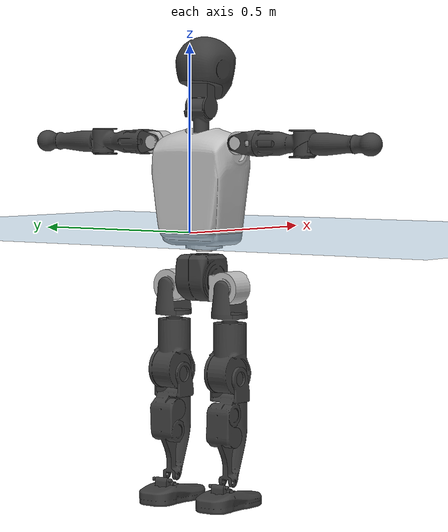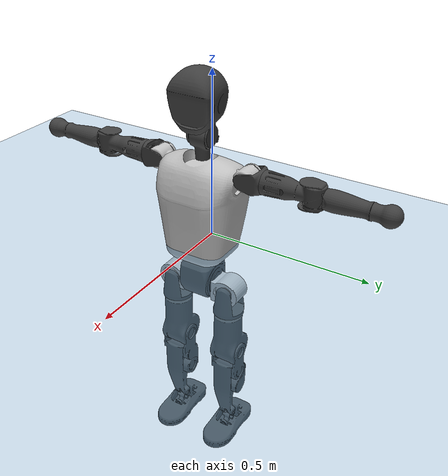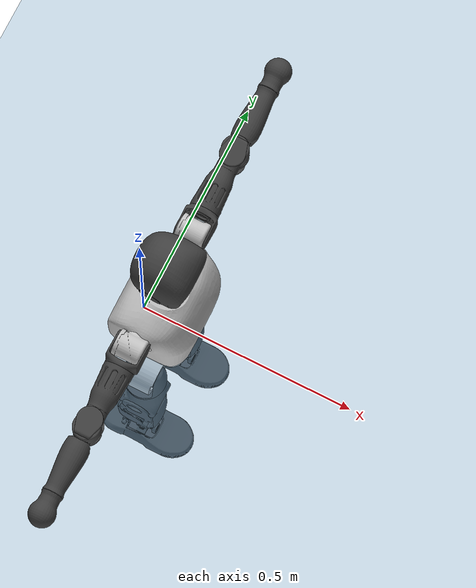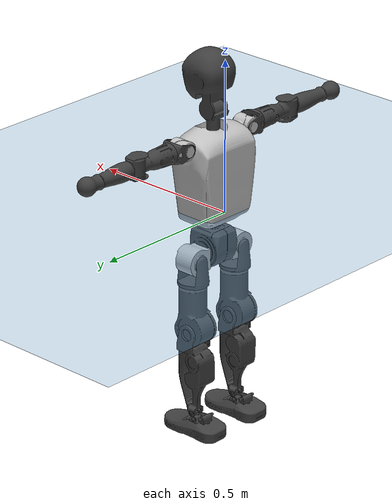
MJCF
<mujoco model="T1">
  <compiler angle="radian" assetdir="assets" balanceinertia="true" inertiafromgeom="false"/>

  <option timestep="0.005" density="1.2" viscosity="2e-05"/>

  <size nkey="1"/>

  <visual>
    <quality shadowsize="8192"/>
    <map shadowclip="0.5"/>
  </visual>

  <default>
    <default class="/">
      <joint armature="0.01" damping="0.01" frictionloss="0.1"/>
      <geom contype="0" conaffinity="0" group="1" solref="-1000 -80"/>
      <site size="0.01 0.005 0.005" group="5"/>
      <general forcelimited="true" biastype="affine" gainprm="25" biasprm="0 -25 -0.6"/>
      <default class="t1">
        <geom rgba="0.25 0.25 0.25 1"/>
        <default class="visual">
          <geom type="mesh" group="2"/>
        </default>
        <default class="collision">
          <geom group="3"/>
        </default>
        <default class="foot">
          <geom size="0.1115 0.05 0.015" type="box" condim="6" group="4" priority="1" solimp="0.015 1 0.015"/>
        </default>
        <default class="reward_collision_sphere">
          <geom group="5" rgba="1 0 0 1"/>
        </default>
      </default>
    </default>
  </default>

  <asset>
    <texture type="skybox" colorspace="auto" name="//unnamed_texture_0" builtin="gradient" rgb1="0.95 0.95 0.95" rgb2="0.95 0.95 0.95" width="100" height="600"/>
    <texture type="2d" colorspace="auto" name="texplane" builtin="checker" rgb1="0.345 0.575 0.748" rgb2="0.345 0.575 0.748" markrgb="1 1 1" width="512" height="512"/>
    <material name="MatPlane" class="/" texture="texplane" texuniform="true" texrepeat="2 2" specular="0.9"/>
    <mesh name="Trunk" class="/" file="Trunk.stl"/>
    <mesh name="H1" class="/" file="H1.stl"/>
    <mesh name="H2" class="/" file="H2.stl"/>
    <mesh name="AL1" class="/" file="AL1.stl"/>
    <mesh name="AL2" class="/" file="AL2.stl"/>
    <mesh name="AL3" class="/" file="AL3.stl"/>
    <mesh name="left_hand_link" class="/" file="left_hand_link.stl"/>
    <mesh name="AR1" class="/" file="AR1.stl"/>
    <mesh name="AR2" class="/" file="AR2.stl"/>
    <mesh name="AR3" class="/" file="AR3.stl"/>
    <mesh name="right_hand_link" class="/" file="right_hand_link.stl"/>
    <mesh name="Waist" class="/" file="Waist.stl"/>
    <mesh name="Hip_Pitch_Left" class="/" file="Hip_Pitch_Left.stl"/>
    <mesh name="Hip_Roll_Left" class="/" file="Hip_Roll_Left.stl"/>
    <mesh name="Hip_Yaw_Left" class="/" file="Hip_Yaw_Left.stl"/>
    <mesh name="Shank_Left" class="/" file="Shank_Left.stl"/>
    <mesh name="Ankle_Cross_Left" class="/" file="Ankle_Cross_Left.stl"/>
    <mesh name="left_foot_link" class="/" file="left_foot_link.stl"/>
    <mesh name="Hip_Pitch_Right" class="/" file="Hip_Pitch_Right.stl"/>
    <mesh name="Hip_Roll_Right" class="/" file="Hip_Roll_Right.stl"/>
    <mesh name="Hip_Yaw_Right" class="/" file="Hip_Yaw_Right.stl"/>
    <mesh name="Shank_Right" class="/" file="Shank_Right.stl"/>
    <mesh name="Ankle_Cross_Right" class="/" file="Ankle_Cross_Right.stl"/>
    <mesh name="right_foot_link" class="/" file="right_foot_link.stl"/>
  </asset>

  <worldbody>
    <geom name="floor" class="/" size="100 100 0.125" type="plane" group="0" material="MatPlane"/>
    <light name="toplight_shadow" class="/" pos="0 0 5" dir="0.0990148 0.0990148 -0.990148" type="directional" ambient="0.04 0.04 0.04" diffuse="0.55 0.55 0.55" specular="0.12 0.12 0.12"/>
    <light name="toplight_fill" class="/" pos="0 0 5" dir="0.0990148 0.0990148 -0.990148" type="directional" castshadow="false" ambient="0.04 0.04 0.04" diffuse="0.3 0.3 0.3" specular="0.08 0.08 0.08"/>
    <body name="trunk" childclass="t1" pos="0.000278627 4.52402e-05 -0.000598736" quat="1 -1.1191e-06 1.2865e-05 1.18884e-05">
      <inertial pos="0.0431598 -0.000220449 0.114925" quat="0.99993 0.00148358 -0.0117376 -0.00065205" mass="9.43443" diaginertia="0.0287629 0.043821 0.0884309"/>
      <joint name="//unnamed_joint_0" type="free" armature="0" damping="0" frictionloss="0"/>
      <geom name="//unnamed_geom_1" class="visual" rgba="0.76 0.76 0.76 1" mesh="Trunk"/>
      <geom name="//unnamed_geom_2" class="collision" size="0.0695111 0.0926815 0.139022" pos="0.0474427 0 0.131542" type="box"/>
      <geom name="//unnamed_geom_3" class="reward_collision_sphere" size="0.106584" pos="0.0474427 0 0.109619"/>
      <geom name="//unnamed_geom_4" class="reward_collision_sphere" size="0.0139022" pos="0.0474427 0.0759515 0"/>
      <geom name="//unnamed_geom_5" class="reward_collision_sphere" size="0.0139022" pos="0.0474427 -0.0759515 0"/>
      <geom name="//unnamed_geom_6" class="reward_collision_sphere" size="0.0139022" pos="0.0474427 0.0956095 0.197313"/>
      <geom name="//unnamed_geom_7" class="reward_collision_sphere" size="0.0139022" pos="0.0474427 -0.0956095 0.197313"/>
      <site name="imu" pos="0.0027193 0.000923846 -0.00153887" size="0.00926815"/>
      <camera name="track" pos="0 -1.78709 0" quat="0.707107 0.707107 0 0" mode="trackcom"/>
      <camera name="ego_camera" pos="0.0964669 0 0.460398" quat="-0.5 -0.5 0.5 0.5"/>
      <body name="H1" pos="0.0494942 0.000608795 0.26632" quat="1 -0.000177515 -0.000148632 0.000361586">
        <inertial pos="-0.00118523 -0.00195954 0.0624436" quat="0.763108 -0.012456 0.00171084 0.646148" mass="0.356897" diaginertia="7.47863e-05 0.000127524 0.000237345"/>
        <joint name="AAHead_yaw" pos="0 0 0" axis="-0.000478556 -0.000124921 1" range="-1.57551 1.55488" armature="0.0094383" damping="0.0108389" frictionloss="0.0909124"/>
        <geom name="//unnamed_geom_8" class="visual" mesh="H1"/>
        <body name="H2" pos="-0.00035545 -0.000305 0.0679412" quat="1 1.72899e-05 2.58148e-05 -2.51289e-05">
          <inertial pos="0.00595601 0.00079494 0.107276" quat="0.988424 0.10616 -0.0748714 -0.0783754" mass="0.504425" diaginertia="0.000626957 0.00109151 0.00271372"/>
          <joint name="Head_pitch" pos="0 0 0" axis="-0.00232791 -0.999997 0.000930215" range="-1.2242 0.334084" armature="0.00934884" damping="0.00969135" frictionloss="0.0926859"/>
          <geom name="//unnamed_geom_9" class="visual" mesh="H2"/>
          <geom name="//unnamed_geom_10" class="collision" size="0.0741452" pos="0.00790712 0 0.12058"/>
          <geom name="//unnamed_geom_11" class="reward_collision_sphere" size="0.0834133" pos="0.0158142 0 0.109619"/>
        </body>
      </body>
      <body name="AL1" pos="0.0470683 0.0953713 0.240634" quat="1 -5.73572e-06 0.000429024 -1.87147e-05">
        <inertial pos="-0.00121863 0.0393915 3.65601e-05" quat="0.50513 0.497631 -0.504234 0.492905" mass="0.420534" diaginertia="0.000421637 0.000737879 0.000462335"/>
        <joint name="Left_Shoulder_Pitch" pos="0 0 0" axis="0.000140006 1 -0.000781674" range="-3.30539 1.23831" armature="0.00948024" damping="0.00665086" frictionloss="0.0929277"/>
        <geom name="//unnamed_geom_12" class="visual" rgba="0.76 0.76 0.76 1" mesh="AL1"/>
        <body name="AL2" pos="0.00097514 0.042945 0.000596815" quat="1 0.000308278 -2.61597e-05 -0.000270529">
          <inertial pos="0.0023272 0.0338845 0.00042721" quat="0.487423 0.512792 -0.488144 0.511056" mass="0.128771" diaginertia="0.000124552 0.000195519 0.000278446"/>
          <joint name="Left_Shoulder_Roll" pos="0 0 0" axis="-0.999998 -0.00152614 0.000846598" range="-1.55468 1.74098" armature="0.00896689" damping="0.0066426" frictionloss="0.0928622"/>
          <geom name="//unnamed_geom_13" class="visual" mesh="AL2"/>
          <body name="AL3" pos="-0.000324065 0.0544532 0.000447113" quat="1 7.43164e-05 0.000108864 0.000188775">
            <inertial pos="-0.000219957 0.0759634 -0.00018288" quat="0.70707 0.70714 -0.00122422 0.00183091" mass="0.812345" diaginertia="0.00399655 0.00727401 0.00099156"/>
            <joint name="Left_Elbow_Pitch" pos="0 0 0" axis="0.000273891 -1 5.17882e-05" range="-2.26187 2.27191" armature="0.00917803" damping="0.00915277" frictionloss="0.0934553"/>
            <geom name="//unnamed_geom_14" class="visual" mesh="AL3"/>
            <geom name="//unnamed_geom_15" class="collision" size="0.0278044 0.0695111" pos="0 0.0446773 0" quat="0.707105 0.707108 0 0" type="cylinder"/>
            <geom name="//unnamed_geom_16" class="reward_collision_sphere" size="0.0333653"/>
            <body name="left_hand_link" pos="0.000727976 0.132335 -0.00019057" quat="1 -2.62796e-05 3.56183e-05 -2.53556e-05">
              <inertial pos="0.000156056 0.0984375 0.000488527" quat="0.707716 0.706497 0.000585836 -0.000261837" mass="0.257614" diaginertia="0.00247657 0.00458601 0.000339683"/>
              <joint name="Left_Elbow_Yaw" pos="0 0 0" axis="0.00195371 0.000657488 0.999998" stiffness="0.000207434" range="-2.44349 -0.0104824" armature="0.00930155" damping="0.014946" frictionloss="0.0951512"/>
              <geom name="//unnamed_geom_17" class="visual" mesh="left_hand_link"/>
              <geom name="//unnamed_geom_18" class="collision" size="0.0278044 0.0810963" pos="0 0.116161 0" quat="0.707105 0.707108 0 0" type="cylinder"/>
              <geom name="//unnamed_geom_19" class="reward_collision_sphere" size="0.0463407"/>
              <geom name="//unnamed_geom_20" class="reward_collision_sphere" size="0.0324385" pos="0 0.0982901 0"/>
              <geom name="//unnamed_geom_21" class="reward_collision_sphere" size="0.0324385" pos="0 0.192113 0"/>
            </body>
          </body>
        </body>
      </body>
      <body name="AR1" pos="0.0452225 -0.094832 0.23971" quat="1 7.2758e-05 0.000218255 -5.07245e-05">
        <inertial pos="-0.00106802 -0.0408569 0.000122396" quat="0.503311 0.495485 -0.505367 0.495759" mass="0.419324" diaginertia="0.000422004 0.000733524 0.000464525"/>
        <joint name="Right_Shoulder_Pitch" pos="0 0 0" axis="0.00447461 -0.999979 0.00466678" stiffness="0.000631813" range="-1.22154 3.30364" armature="0.00932204" damping="0.0053695" frictionloss="0.0932665"/>
        <geom name="//unnamed_geom_22" class="visual" rgba="0.76 0.76 0.76 1" mesh="AR1"/>
        <body name="AR2" pos="-0.000679593 -0.0417153 -0.000373935" quat="1 0.000180349 -0.000158507 5.20529e-05">
          <inertial pos="0.00386601 -0.0341391 0.00122646" quat="0.511638 0.487031 -0.514958 0.485639" mass="0.127498" diaginertia="0.000123748 0.000194691 0.000277559"/>
          <joint name="Right_Shoulder_Roll" pos="0 0 0" axis="-0.99997 -0.00770216 -0.00026599" range="-1.7539 1.56851" armature="0.00930735" damping="0.00746523" frictionloss="0.0927662"/>
          <geom name="//unnamed_geom_23" class="visual" mesh="AR2"/>
          <body name="AR3" pos="0.000469562 -0.0537633 -0.000577143" quat="1 3.19568e-05 -5.17232e-05 6.07611e-05">
            <inertial pos="-0.000443463 -0.0768008 0.000209731" quat="0.707831 0.706371 0.00369076 -0.000872974" mass="0.817563" diaginertia="0.00400603 0.0071973 0.000975329"/>
            <joint name="Right_Elbow_Pitch" pos="0 0 0" axis="0.000334568 1 -0.000743769" range="-2.27038 2.26776" armature="0.00907381" damping="0.00533899" frictionloss="0.0937409"/>
            <geom name="//unnamed_geom_24" class="visual" mesh="AR3"/>
            <geom name="//unnamed_geom_25" class="collision" size="0.0278044 0.0695111" pos="0 -0.0446773 0" quat="0.707105 0.707108 0 0" type="cylinder"/>
            <geom name="//unnamed_geom_26" class="reward_collision_sphere" size="0.0333653"/>
            <body name="right_hand_link" pos="-0.000418938 -0.131616 -0.000183135" quat="1 -1.56312e-06 0.000327415 -9.77881e-05">
              <inertial pos="4.63418e-05 -0.097728 0.00103768" quat="0.706518 0.707695 -0.000108291 -1.75296e-05" mass="0.260436" diaginertia="0.00253662 0.00461749 0.000338271"/>
              <joint name="Right_Elbow_Yaw" pos="0 0 0" axis="-0.00291558 -0.00173505 0.999994" range="0.00965218 2.44731" armature="0.00950662" damping="0.00880881" frictionloss="0.0923008"/>
              <geom name="//unnamed_geom_27" class="visual" mesh="right_hand_link"/>
              <geom name="//unnamed_geom_28" class="collision" size="0.0278044 0.0810963" pos="0 -0.116161 0" quat="0.707105 0.707108 0 0" type="cylinder"/>
              <geom name="//unnamed_geom_29" class="reward_collision_sphere" size="0.0463407"/>
              <geom name="//unnamed_geom_30" class="reward_collision_sphere" size="0.0324385" pos="0 -0.0982901 0"/>
              <geom name="//unnamed_geom_31" class="reward_collision_sphere" size="0.0324385" pos="0 -0.192113 0"/>
            </body>
          </body>
        </body>
      </body>
      <body name="Waist" pos="0.0496064 -0.00121786 -0.125806" quat="1 -7.07873e-05 -5.7768e-05 -2.69806e-05">
        <inertial pos="0.00186489 -0.00081366 0.00775164" quat="0.983307 0.00173283 -0.181921 0.00311922" mass="2.04774" diaginertia="0.00167112 0.00303368 0.00759578"/>
        <joint name="Waist" pos="0 0 0" axis="-0.000352176 -0.000270937 1" range="-1.55896 1.56291" armature="0.00940509" damping="0.0124969" frictionloss="0.0930291"/>
        <geom name="//unnamed_geom_32" class="visual" mesh="Waist"/>
        <body name="Hip_Pitch_Left" pos="0.000325112 0.094105 7.83272e-05" quat="1 5.5544e-05 3.28199e-05 1.59847e-05">
          <inertial pos="0.0012507 -0.00639821 -0.0198694" quat="0.975182 0.220939 0.0143073 0.00120497" mass="0.816796" diaginertia="0.000565243 0.000848065 0.00200705"/>
          <joint name="Left_Hip_Pitch" pos="0 0 0" axis="0.00297693 0.999994 -0.00165818" range="-1.80299 1.55415" armature="0.00923163" damping="0.00706437" frictionloss="0.0927975"/>
          <geom name="//unnamed_geom_33" class="visual" rgba="0.76 0.76 0.76 1" mesh="Hip_Pitch_Left"/>
          <body name="Hip_Roll_Left" pos="-0.000315202 -0.000226084 -0.0213703" quat="1 -0.000137474 0.000251862 8.81272e-05">
            <inertial pos="0.000529299 -0.000197829 -0.0591017" quat="0.707167 -0.00645426 -0.00626114 0.706989" mass="0.306879" diaginertia="0.00054078 0.000865804 0.000817589"/>
            <joint name="Left_Hip_Roll" pos="0 0 0" axis="-1 -0.00013686 0.00024336" range="-1.56225 0.196864" armature="0.00927793" damping="0.0107561" frictionloss="0.0899397"/>
            <geom name="//unnamed_geom_34" class="visual" mesh="Hip_Roll_Left"/>
            <geom name="//unnamed_geom_35" class="reward_collision_sphere" size="0.0509748"/>
            <body name="Hip_Yaw_Left" pos="0.000635556 -0.000482993 -0.0898152" quat="1 0.000202184 0.000214054 0.000243124">
              <inertial pos="-0.00557687 -0.00066001 -0.0979749" quat="0.698022 -0.0322445 -0.0307358 0.714689" mass="1.73774" diaginertia="0.00797491 0.0143001 0.00406358"/>
              <joint name="Left_Hip_Yaw" pos="0 0 0" axis="0.000289366 0.00348026 -0.999994" stiffness="0.00039781" range="-1.00403 1.01177" armature="0.00929321" damping="0.00856867" frictionloss="0.0928455"/>
              <geom name="//unnamed_geom_36" class="visual" mesh="Hip_Yaw_Left"/>
              <geom name="//unnamed_geom_37" class="collision" size="0.0463407 0.0741452" type="cylinder"/>
              <body name="Shank_Left" pos="-0.011543 -0.000120247 -0.146747" quat="1 -0.000201489 0.000316206 8.41552e-05">
                <inertial pos="-0.0047231 0.000319553 -0.13671" quat="0.997737 -0.000184863 -0.0218411 0.0635945" mass="1.3694" diaginertia="0.0107951 0.0193907 0.00293805"/>
                <joint name="Left_Knee_Pitch" pos="0 0 0" axis="-0.00198241 0.999995 -0.00243489" range="-0.00400146 2.33615" armature="0.00941148" damping="0.00933281" frictionloss="0.0912252"/>
                <geom name="//unnamed_geom_38" class="visual" mesh="Shank_Left"/>
                <geom name="//unnamed_geom_39" class="collision" size="0.0463407 0.0695111" pos="0 0 -0.131542" type="cylinder"/>
                <geom name="//unnamed_geom_40" class="reward_collision_sphere" size="0.060243"/>
                <body name="Ankle_Cross_Left" pos="0.00051749 -0.000277047 -0.30676" quat="1 0.000217571 0.000411125 0.000130583">
                  <inertial pos="-0.00296937 -0.000568921 -0.0094008" quat="0.443214 0.551042 0.550771 0.443357" mass="0.0582967" diaginertia="8.92629e-06 1.47546e-05 1.812e-05"/>
                  <joint name="Left_Ankle_Pitch" pos="0 0 0" axis="0.00276493 0.999994 -0.00195438" range="-0.885097 0.332223" armature="0.0096153" damping="0.00651375" frictionloss="0.0916854"/>
                  <geom name="//unnamed_geom_41" class="visual" mesh="Ankle_Cross_Left"/>
                  <body name="left_foot_link" pos="-0.000932363 -0.000160358 -0.0138048" quat="1 2.13754e-05 2.85564e-05 -4.17742e-06">
                    <inertial pos="-0.000176898 6.73201e-05 -0.00950653" quat="-0.000382778 0.620815 4.28706e-05 0.783957" mass="0.549574" diaginertia="0.00082496 0.00135744 0.0034681"/>
                    <joint name="Left_Ankle_Roll" pos="0 0 0" axis="-0.999999 0.00140416 1.75086e-05" range="-0.424717 0.445828" armature="0.00932179" damping="0.0110876" frictionloss="0.0927795"/>
                    <geom name="//unnamed_geom_42" class="visual" mesh="left_foot_link"/>
                    <geom name="left_foot" class="foot" size="0.0999237 0.0477609 0.0136711" pos="0.00790712 0 -0.0164428"/>
                    <geom name="//unnamed_geom_44" class="reward_collision_sphere" size="0.0481944" pos="0.00790712 0 -0.0164428"/>
                    <geom name="//unnamed_geom_45" class="reward_collision_sphere" size="0.0278044" pos="0.0751176 -0.0205516 -0.0164428"/>
                    <geom name="//unnamed_geom_46" class="reward_collision_sphere" size="0.0278044" pos="-0.0553498 -0.0205516 -0.0164428"/>
                    <site name="left_foot" class="foot" pos="0.00790712 0 -0.0164428" size="0.00926815"/>
                  </body>
                </body>
              </body>
            </body>
          </body>
        </body>
        <body name="Hip_Pitch_Right" pos="-0.00122556 -0.0951578 -0.000198307" quat="1 -0.00014247 6.85955e-05 8.577e-05">
          <inertial pos="0.000506467 0.00690286 -0.0194039" quat="0.973249 -0.229173 0.0154443 -0.00532496" mass="0.81671" diaginertia="0.000560174 0.000836246 0.00197031"/>
          <joint name="Right_Hip_Pitch" pos="0 0 0" axis="-0.00439945 -0.99999 0.000403022" range="-1.57594 1.80399" armature="0.00907825" damping="0.00673281" frictionloss="0.0889227"/>
          <geom name="//unnamed_geom_47" class="visual" rgba="0.76 0.76 0.76 1" mesh="Hip_Pitch_Right"/>
          <body name="Hip_Roll_Right" pos="0.000314647 0.000529279 -0.0225266" quat="1 0.000113353 -0.000249741 0.000417821">
            <inertial pos="0.00174328 -2.7445e-05 -0.0579923" quat="0.70791 -0.00858827 -0.00582886 0.706227" mass="0.309434" diaginertia="0.000549261 0.000876587 0.000822899"/>
            <joint name="Right_Hip_Roll" pos="0 0 0" axis="-0.999998 -0.00178963 0.00111975" range="-0.206947 1.55779" armature="0.00919152" damping="0.00917596" frictionloss="0.0925833"/>
            <geom name="//unnamed_geom_48" class="visual" mesh="Hip_Roll_Right"/>
            <geom name="//unnamed_geom_49" class="reward_collision_sphere" size="0.0509748"/>
            <body name="Hip_Yaw_Right" pos="0.000229915 0.000653456 -0.0898828" quat="1 -0.000176589 -4.10513e-05 1.14249e-05">
              <inertial pos="-0.00637117 -0.000760909 -0.0977958" quat="0.711853 -0.0337742 -0.0335461 0.700714" mass="1.72134" diaginertia="0.00794678 0.0145347 0.00406379"/>
              <joint name="Right_Hip_Yaw" pos="0 0 0" axis="0.000232086 0.000710459 -1" stiffness="0.000218441" range="-1.00368 0.99199" armature="0.00930628" damping="0.00658861" frictionloss="0.0927204"/>
              <geom name="//unnamed_geom_50" class="visual" mesh="Hip_Yaw_Right"/>
              <geom name="//unnamed_geom_51" class="collision" size="0.0463407 0.0741452" type="cylinder"/>
              <body name="Shank_Right" pos="-0.010707 -0.00126999 -0.146465" quat="1 -4.90345e-05 -3.46119e-05 -2.96494e-05">
                <inertial pos="-0.00514141 -0.000898818 -0.134982" quat="0.999267 -0.000541253 -0.0232044 -0.0304302" mass="1.42903" diaginertia="0.0108263 0.0198875 0.00312412"/>
                <joint name="Right_Knee_Pitch" pos="0 0 0" axis="0.00440336 -0.999983 0.00384572" range="-2.34878 -0.0102331" armature="0.00917536" damping="0.0031154" frictionloss="0.0905429"/>
                <geom name="//unnamed_geom_52" class="visual" mesh="Shank_Right"/>
                <geom name="//unnamed_geom_53" class="collision" size="0.0463407 0.0695111" pos="0 0 -0.131542" type="cylinder"/>
                <geom name="//unnamed_geom_54" class="reward_collision_sphere" size="0.060243"/>
                <body name="Ankle_Cross_Right" pos="0.000612398 -9.75041e-05 -0.306223" quat="1 5.98284e-05 -4.31884e-05 -2.88548e-05">
                  <inertial pos="-0.00282087 0.00035196 -0.00855735" quat="0.442166 0.550692 0.550678 0.444952" mass="0.0588129" diaginertia="9.05542e-06 1.47732e-05 1.8098e-05"/>
                  <joint name="Right_Ankle_Pitch" pos="0 0 0" axis="-0.00418564 -0.999991 0.00113004" range="-0.346604 0.88464" armature="0.00900456" damping="0.0104046" frictionloss="0.0898531"/>
                  <geom name="//unnamed_geom_55" class="visual" mesh="Ankle_Cross_Right"/>
                  <body name="right_foot_link" pos="-0.000145432 -0.000757882 -0.0138812" quat="1 -0.00022201 0.000277483 0.000203014">
                    <inertial pos="0.000354534 0.000199161 -0.0096743" quat="0.000693323 0.619797 0.000454701 0.784762" mass="0.540616" diaginertia="0.000839556 0.00135453 0.00347365"/>
                    <joint name="Right_Ankle_Roll" pos="0 0 0" axis="-0.999999 -0.000709802 0.000704581" range="-0.42603 0.426501" armature="0.00961801" damping="0.00735753" frictionloss="0.0919549"/>
                    <geom name="//unnamed_geom_56" class="visual" mesh="right_foot_link"/>
                    <geom name="right_foot" class="foot" size="0.094607 0.0466497 0.0137812" pos="0.00790712 0 -0.0164428"/>
                    <geom name="//unnamed_geom_58" class="reward_collision_sphere" size="0.0370726"/>
                    <geom name="//unnamed_geom_59" class="reward_collision_sphere" size="0.0278044" pos="0.00790712 0 -0.0164428"/>
                    <geom name="//unnamed_geom_60" class="reward_collision_sphere" size="0.0278044" pos="0.0751176 0.0205516 -0.0164428"/>
                    <geom name="//unnamed_geom_61" class="reward_collision_sphere" size="0.0278044" pos="-0.0553498 0.0205516 -0.0164428"/>
                    <site name="right_foot" class="foot" pos="0.00790712 0 -0.0164428" size="0.00926815"/>
                  </body>
                </body>
              </body>
            </body>
          </body>
        </body>
      </body>
    </body>
  </worldbody>

  <contact>
    <pair class="/" geom1="floor" geom2="left_foot" name="//unnamed_contact_0"/>
    <pair class="/" geom1="floor" geom2="right_foot" name="//unnamed_contact_1"/>
  </contact>

  <actuator>
    <general name="AAHead_yaw" class="/" joint="AAHead_yaw" forcerange="-6.6412 6.6412" gainprm="22.6544" biasprm="0 -22.6544 -0.535364"/>
    <general name="Head_pitch" class="/" joint="Head_pitch" forcerange="-6.52233 6.52233" gainprm="22.6544" biasprm="0 -22.6544 -0.535364"/>
    <general name="Left_Shoulder_Pitch" class="/" joint="Left_Shoulder_Pitch" forcerange="-16.5122 16.5122" gainprm="22.6544" biasprm="0 -22.6544 -0.535364"/>
    <general name="Left_Shoulder_Roll" class="/" joint="Left_Shoulder_Roll" forcerange="-16.616 16.616" gainprm="22.6544" biasprm="0 -22.6544 -0.535364"/>
    <general name="Left_Elbow_Pitch" class="/" joint="Left_Elbow_Pitch" forcerange="-16.4781 16.4781" gainprm="22.6544" biasprm="0 -22.6544 -0.535364"/>
    <general name="Left_Elbow_Yaw" class="/" joint="Left_Elbow_Yaw" forcerange="-16.5338 16.5338" gainprm="22.6544" biasprm="0 -22.6544 -0.535364"/>
    <general name="Right_Shoulder_Pitch" class="/" joint="Right_Shoulder_Pitch" forcerange="-16.8811 16.8811" gainprm="22.6544" biasprm="0 -22.6544 -0.535364"/>
    <general name="Right_Shoulder_Roll" class="/" joint="Right_Shoulder_Roll" forcerange="-16.7032 16.7032" gainprm="22.6544" biasprm="0 -22.6544 -0.535364"/>
    <general name="Right_Elbow_Pitch" class="/" joint="Right_Elbow_Pitch" forcerange="-16.5453 16.5453" gainprm="22.6544" biasprm="0 -22.6544 -0.535364"/>
    <general name="Right_Elbow_Yaw" class="/" joint="Right_Elbow_Yaw" forcerange="-16.4115 16.4115" gainprm="22.6544" biasprm="0 -22.6544 -0.535364"/>
    <general name="Waist" class="/" joint="Waist" forcerange="-27.2816 27.2816" gainprm="22.6544" biasprm="0 -22.6544 -0.535364"/>
    <general name="Left_Hip_Pitch" class="/" joint="Left_Hip_Pitch" forcerange="-40.6343 40.6343" gainprm="22.6544" biasprm="0 -22.6544 -0.535364"/>
    <general name="Left_Hip_Roll" class="/" joint="Left_Hip_Roll" forcerange="-28.319 28.319" gainprm="22.6544" biasprm="0 -22.6544 -0.535364"/>
    <general name="Left_Hip_Yaw" class="/" joint="Left_Hip_Yaw" forcerange="-27.9447 27.9447" gainprm="22.6544" biasprm="0 -22.6544 -0.535364"/>
    <general name="Left_Knee_Pitch" class="/" joint="Left_Knee_Pitch" forcerange="-54.6456 54.6456" gainprm="22.6544" biasprm="0 -22.6544 -0.535364"/>
    <general name="Left_Ankle_Pitch" class="/" joint="Left_Ankle_Pitch" forcerange="-18.8219 18.8219" gainprm="22.6544" biasprm="0 -22.6544 -0.535364"/>
    <general name="Left_Ankle_Roll" class="/" joint="Left_Ankle_Roll" forcerange="-14.0019 14.0019" gainprm="22.6544" biasprm="0 -22.6544 -0.535364"/>
    <general name="Right_Hip_Pitch" class="/" joint="Right_Hip_Pitch" forcerange="-42.1109 42.1109" gainprm="22.6544" biasprm="0 -22.6544 -0.535364"/>
    <general name="Right_Hip_Roll" class="/" joint="Right_Hip_Roll" forcerange="-28.286 28.286" gainprm="22.6544" biasprm="0 -22.6544 -0.535364"/>
    <general name="Right_Hip_Yaw" class="/" joint="Right_Hip_Yaw" forcerange="-27.9809 27.9809" gainprm="22.6544" biasprm="0 -22.6544 -0.535364"/>
    <general name="Right_Knee_Pitch" class="/" joint="Right_Knee_Pitch" forcerange="-53.5589 53.5589" gainprm="22.6544" biasprm="0 -22.6544 -0.535364"/>
    <general name="Right_Ankle_Pitch" class="/" joint="Right_Ankle_Pitch" forcerange="-18.9135 18.9135" gainprm="22.6544" biasprm="0 -22.6544 -0.535364"/>
    <general name="Right_Ankle_Roll" class="/" joint="Right_Ankle_Roll" forcerange="-13.781 13.781" gainprm="22.6544" biasprm="0 -22.6544 -0.535364"/>
  </actuator>

  <sensor>
    <gyro site="imu" name="imu_angular_velocity"/>
    <velocimeter site="imu" name="imu_linear_velocity"/>
    <framelinvel objtype="site" objname="left_foot" name="left_foot_global_linear_velocity"/>
    <framelinvel objtype="site" objname="right_foot" name="right_foot_global_linear_velocity"/>
  </sensor>

  <keyframe>
    <key name="home" qpos="0 0 0.6385 1 0 0 0 0 0 0 1.4 0 -0.4 0 -1.4 0 0.4 0 -0.4 0 0 0.8 -0.4 0 0.4 0 0 -0.8 0.4 0"/>
  </keyframe>
</mujoco>
